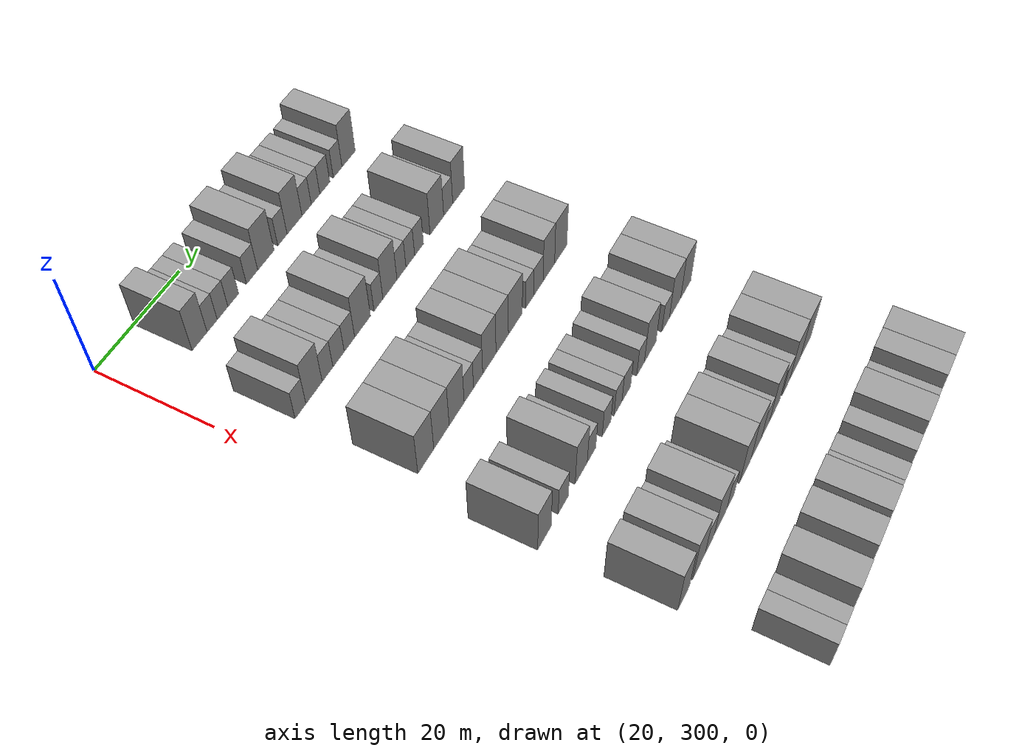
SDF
<sdf version="1.6">
 <world name="default">
  <model name="building_158">
   <static>1</static>
   <pose>25.0000 310.8632 0 0.000000 0.000000 0.000000</pose>
   <link name="link">
    <pose>0 0 4.50 0 0 0</pose>
    <collision name="collision"><geometry><box><size>10.0000 3.6101 9.0000</size></box></geometry></collision>
    <visual name="visual">
     <cast_shadows>0</cast_shadows>
     <geometry><box><size>10.0000 3.6101 9.0000</size></box></geometry>
     <material>
      <script>
       <uri>model://grey_wall/materials/scripts</uri>
       <uri>model://grey_wall/materials/textures</uri>
       <name>vrc/grey_wall</name>
      </script>
     </material>
    </visual>
   </link>
  </model>
  <model name="building_159">
   <static>1</static>
   <pose>25.0000 313.9102 0 0.000000 0.000000 0.000000</pose>
   <link name="link">
    <pose>0 0 3.00 0 0 0</pose>
    <collision name="collision"><geometry><box><size>10.0000 2.4839 6.0000</size></box></geometry></collision>
    <visual name="visual">
     <cast_shadows>0</cast_shadows>
     <geometry><box><size>10.0000 2.4839 6.0000</size></box></geometry>
     <material>
      <script>
       <uri>model://grey_wall/materials/scripts</uri>
       <uri>model://grey_wall/materials/textures</uri>
       <name>vrc/grey_wall</name>
      </script>
     </material>
    </visual>
   </link>
  </model>
  <model name="building_160">
   <static>1</static>
   <pose>25.0000 316.4778 0 0.000000 0.000000 0.000000</pose>
   <link name="link">
    <pose>0 0 3.00 0 0 0</pose>
    <collision name="collision"><geometry><box><size>10.0000 2.6513 6.0000</size></box></geometry></collision>
    <visual name="visual">
     <cast_shadows>0</cast_shadows>
     <geometry><box><size>10.0000 2.6513 6.0000</size></box></geometry>
     <material>
      <script>
       <uri>model://grey_wall/materials/scripts</uri>
       <uri>model://grey_wall/materials/textures</uri>
       <name>vrc/grey_wall</name>
      </script>
     </material>
    </visual>
   </link>
  </model>
  <model name="building_161">
   <static>1</static>
   <pose>25.0000 319.1506 0 0.000000 0.000000 0.000000</pose>
   <link name="link">
    <pose>0 0 3.00 0 0 0</pose>
    <collision name="collision"><geometry><box><size>10.0000 2.6942 6.0000</size></box></geometry></collision>
    <visual name="visual">
     <cast_shadows>0</cast_shadows>
     <geometry><box><size>10.0000 2.6942 6.0000</size></box></geometry>
     <material>
      <script>
       <uri>model://grey_wall/materials/scripts</uri>
       <uri>model://grey_wall/materials/textures</uri>
       <name>vrc/grey_wall</name>
      </script>
     </material>
    </visual>
   </link>
  </model>
  <model name="building_162">
   <static>1</static>
   <pose>25.0000 323.9508 0 0.000000 0.000000 0.000000</pose>
   <link name="link">
    <pose>0 0 3.00 0 0 0</pose>
    <collision name="collision"><geometry><box><size>10.0000 2.9062 6.0000</size></box></geometry></collision>
    <visual name="visual">
     <cast_shadows>0</cast_shadows>
     <geometry><box><size>10.0000 2.9062 6.0000</size></box></geometry>
     <material>
      <script>
       <uri>model://grey_wall/materials/scripts</uri>
       <uri>model://grey_wall/materials/textures</uri>
       <name>vrc/grey_wall</name>
      </script>
     </material>
    </visual>
   </link>
  </model>
  <model name="building_163">
   <static>1</static>
   <pose>25.0000 327.5592 0 0.000000 0.000000 0.000000</pose>
   <link name="link">
    <pose>0 0 4.50 0 0 0</pose>
    <collision name="collision"><geometry><box><size>10.0000 4.3105 9.0000</size></box></geometry></collision>
    <visual name="visual">
     <cast_shadows>0</cast_shadows>
     <geometry><box><size>10.0000 4.3105 9.0000</size></box></geometry>
     <material>
      <script>
       <uri>model://grey_wall/materials/scripts</uri>
       <uri>model://grey_wall/materials/textures</uri>
       <name>vrc/grey_wall</name>
      </script>
     </material>
    </visual>
   </link>
  </model>
  <model name="building_164">
   <static>1</static>
   <pose>25.0000 331.9665 0 0.000000 0.000000 0.000000</pose>
   <link name="link">
    <pose>0 0 3.00 0 0 0</pose>
    <collision name="collision"><geometry><box><size>10.0000 2.5041 6.0000</size></box></geometry></collision>
    <visual name="visual">
     <cast_shadows>0</cast_shadows>
     <geometry><box><size>10.0000 2.5041 6.0000</size></box></geometry>
     <material>
      <script>
       <uri>model://grey_wall/materials/scripts</uri>
       <uri>model://grey_wall/materials/textures</uri>
       <name>vrc/grey_wall</name>
      </script>
     </material>
    </visual>
   </link>
  </model>
  <model name="building_165">
   <static>1</static>
   <pose>25.0000 335.2694 0 0.000000 0.000000 0.000000</pose>
   <link name="link">
    <pose>0 0 4.50 0 0 0</pose>
    <collision name="collision"><geometry><box><size>10.0000 4.1018 9.0000</size></box></geometry></collision>
    <visual name="visual">
     <cast_shadows>0</cast_shadows>
     <geometry><box><size>10.0000 4.1018 9.0000</size></box></geometry>
     <material>
      <script>
       <uri>model://grey_wall/materials/scripts</uri>
       <uri>model://grey_wall/materials/textures</uri>
       <name>vrc/grey_wall</name>
      </script>
     </material>
    </visual>
   </link>
  </model>
  <model name="building_166">
   <static>1</static>
   <pose>25.0000 338.6179 0 0.000000 0.000000 0.000000</pose>
   <link name="link">
    <pose>0 0 3.00 0 0 0</pose>
    <collision name="collision"><geometry><box><size>10.0000 2.5952 6.0000</size></box></geometry></collision>
    <visual name="visual">
     <cast_shadows>0</cast_shadows>
     <geometry><box><size>10.0000 2.5952 6.0000</size></box></geometry>
     <material>
      <script>
       <uri>model://grey_wall/materials/scripts</uri>
       <uri>model://grey_wall/materials/textures</uri>
       <name>vrc/grey_wall</name>
      </script>
     </material>
    </visual>
   </link>
  </model>
  <model name="building_167">
   <static>1</static>
   <pose>25.0000 341.1165 0 0.000000 0.000000 0.000000</pose>
   <link name="link">
    <pose>0 0 3.00 0 0 0</pose>
    <collision name="collision"><geometry><box><size>10.0000 2.4020 6.0000</size></box></geometry></collision>
    <visual name="visual">
     <cast_shadows>0</cast_shadows>
     <geometry><box><size>10.0000 2.4020 6.0000</size></box></geometry>
     <material>
      <script>
       <uri>model://grey_wall/materials/scripts</uri>
       <uri>model://grey_wall/materials/textures</uri>
       <name>vrc/grey_wall</name>
      </script>
     </material>
    </visual>
   </link>
  </model>
  <model name="building_168">
   <static>1</static>
   <pose>25.0000 343.7539 0 0.000000 0.000000 0.000000</pose>
   <link name="link">
    <pose>0 0 3.00 0 0 0</pose>
    <collision name="collision"><geometry><box><size>10.0000 2.8727 6.0000</size></box></geometry></collision>
    <visual name="visual">
     <cast_shadows>0</cast_shadows>
     <geometry><box><size>10.0000 2.8727 6.0000</size></box></geometry>
     <material>
      <script>
       <uri>model://grey_wall/materials/scripts</uri>
       <uri>model://grey_wall/materials/textures</uri>
       <name>vrc/grey_wall</name>
      </script>
     </material>
    </visual>
   </link>
  </model>
  <model name="building_169">
   <static>1</static>
   <pose>25.0000 347.4581 0 0.000000 0.000000 0.000000</pose>
   <link name="link">
    <pose>0 0 3.00 0 0 0</pose>
    <collision name="collision"><geometry><box><size>10.0000 2.5357 6.0000</size></box></geometry></collision>
    <visual name="visual">
     <cast_shadows>0</cast_shadows>
     <geometry><box><size>10.0000 2.5357 6.0000</size></box></geometry>
     <material>
      <script>
       <uri>model://grey_wall/materials/scripts</uri>
       <uri>model://grey_wall/materials/textures</uri>
       <name>vrc/grey_wall</name>
      </script>
     </material>
    </visual>
   </link>
  </model>
  <model name="building_170">
   <static>1</static>
   <pose>25.0000 350.6751 0 0.000000 0.000000 0.000000</pose>
   <link name="link">
    <pose>0 0 4.50 0 0 0</pose>
    <collision name="collision"><geometry><box><size>10.0000 3.8984 9.0000</size></box></geometry></collision>
    <visual name="visual">
     <cast_shadows>0</cast_shadows>
     <geometry><box><size>10.0000 3.8984 9.0000</size></box></geometry>
     <material>
      <script>
       <uri>model://grey_wall/materials/scripts</uri>
       <uri>model://grey_wall/materials/textures</uri>
       <name>vrc/grey_wall</name>
      </script>
     </material>
    </visual>
   </link>
  </model>
  <model name="building_332">
   <static>1</static>
   <pose>44.0000 307.4286 0 0.000000 0.000000 0.000000</pose>
   <link name="link">
    <pose>0 0 3.00 0 0 0</pose>
    <collision name="collision"><geometry><box><size>10.0000 2.6890 6.0000</size></box></geometry></collision>
    <visual name="visual">
     <cast_shadows>0</cast_shadows>
     <geometry><box><size>10.0000 2.6890 6.0000</size></box></geometry>
     <material>
      <script>
       <uri>model://grey_wall/materials/scripts</uri>
       <uri>model://grey_wall/materials/textures</uri>
       <name>vrc/grey_wall</name>
      </script>
     </material>
    </visual>
   </link>
  </model>
  <model name="building_333">
   <static>1</static>
   <pose>44.0000 310.8376 0 0.000000 0.000000 0.000000</pose>
   <link name="link">
    <pose>0 0 4.50 0 0 0</pose>
    <collision name="collision"><geometry><box><size>10.0000 4.1290 9.0000</size></box></geometry></collision>
    <visual name="visual">
     <cast_shadows>0</cast_shadows>
     <geometry><box><size>10.0000 4.1290 9.0000</size></box></geometry>
     <material>
      <script>
       <uri>model://grey_wall/materials/scripts</uri>
       <uri>model://grey_wall/materials/textures</uri>
       <name>vrc/grey_wall</name>
      </script>
     </material>
    </visual>
   </link>
  </model>
  <model name="building_334">
   <static>1</static>
   <pose>44.0000 314.2913 0 0.000000 0.000000 0.000000</pose>
   <link name="link">
    <pose>0 0 3.00 0 0 0</pose>
    <collision name="collision"><geometry><box><size>10.0000 2.7785 6.0000</size></box></geometry></collision>
    <visual name="visual">
     <cast_shadows>0</cast_shadows>
     <geometry><box><size>10.0000 2.7785 6.0000</size></box></geometry>
     <material>
      <script>
       <uri>model://grey_wall/materials/scripts</uri>
       <uri>model://grey_wall/materials/textures</uri>
       <name>vrc/grey_wall</name>
      </script>
     </material>
    </visual>
   </link>
  </model>
  <model name="building_335">
   <static>1</static>
   <pose>44.0000 317.1644 0 0.000000 0.000000 0.000000</pose>
   <link name="link">
    <pose>0 0 3.00 0 0 0</pose>
    <collision name="collision"><geometry><box><size>10.0000 2.9675 6.0000</size></box></geometry></collision>
    <visual name="visual">
     <cast_shadows>0</cast_shadows>
     <geometry><box><size>10.0000 2.9675 6.0000</size></box></geometry>
     <material>
      <script>
       <uri>model://grey_wall/materials/scripts</uri>
       <uri>model://grey_wall/materials/textures</uri>
       <name>vrc/grey_wall</name>
      </script>
     </material>
    </visual>
   </link>
  </model>
  <model name="building_336">
   <static>1</static>
   <pose>44.0000 320.0405 0 0.000000 0.000000 0.000000</pose>
   <link name="link">
    <pose>0 0 3.00 0 0 0</pose>
    <collision name="collision"><geometry><box><size>10.0000 2.7847 6.0000</size></box></geometry></collision>
    <visual name="visual">
     <cast_shadows>0</cast_shadows>
     <geometry><box><size>10.0000 2.7847 6.0000</size></box></geometry>
     <material>
      <script>
       <uri>model://grey_wall/materials/scripts</uri>
       <uri>model://grey_wall/materials/textures</uri>
       <name>vrc/grey_wall</name>
      </script>
     </material>
    </visual>
   </link>
  </model>
  <model name="building_337">
   <static>1</static>
   <pose>44.0000 323.5796 0 0.000000 0.000000 0.000000</pose>
   <link name="link">
    <pose>0 0 4.50 0 0 0</pose>
    <collision name="collision"><geometry><box><size>10.0000 4.2935 9.0000</size></box></geometry></collision>
    <visual name="visual">
     <cast_shadows>0</cast_shadows>
     <geometry><box><size>10.0000 4.2935 9.0000</size></box></geometry>
     <material>
      <script>
       <uri>model://grey_wall/materials/scripts</uri>
       <uri>model://grey_wall/materials/textures</uri>
       <name>vrc/grey_wall</name>
      </script>
     </material>
    </visual>
   </link>
  </model>
  <model name="building_338">
   <static>1</static>
   <pose>44.0000 327.9568 0 0.000000 0.000000 0.000000</pose>
   <link name="link">
    <pose>0 0 3.00 0 0 0</pose>
    <collision name="collision"><geometry><box><size>10.0000 2.4608 6.0000</size></box></geometry></collision>
    <visual name="visual">
     <cast_shadows>0</cast_shadows>
     <geometry><box><size>10.0000 2.4608 6.0000</size></box></geometry>
     <material>
      <script>
       <uri>model://grey_wall/materials/scripts</uri>
       <uri>model://grey_wall/materials/textures</uri>
       <name>vrc/grey_wall</name>
      </script>
     </material>
    </visual>
   </link>
  </model>
  <model name="building_339">
   <static>1</static>
   <pose>44.0000 331.1853 0 0.000000 0.000000 0.000000</pose>
   <link name="link">
    <pose>0 0 4.50 0 0 0</pose>
    <collision name="collision"><geometry><box><size>10.0000 3.9963 9.0000</size></box></geometry></collision>
    <visual name="visual">
     <cast_shadows>0</cast_shadows>
     <geometry><box><size>10.0000 3.9963 9.0000</size></box></geometry>
     <material>
      <script>
       <uri>model://grey_wall/materials/scripts</uri>
       <uri>model://grey_wall/materials/textures</uri>
       <name>vrc/grey_wall</name>
      </script>
     </material>
    </visual>
   </link>
  </model>
  <model name="building_340">
   <static>1</static>
   <pose>44.0000 334.4826 0 0.000000 0.000000 0.000000</pose>
   <link name="link">
    <pose>0 0 3.00 0 0 0</pose>
    <collision name="collision"><geometry><box><size>10.0000 2.5983 6.0000</size></box></geometry></collision>
    <visual name="visual">
     <cast_shadows>0</cast_shadows>
     <geometry><box><size>10.0000 2.5983 6.0000</size></box></geometry>
     <material>
      <script>
       <uri>model://grey_wall/materials/scripts</uri>
       <uri>model://grey_wall/materials/textures</uri>
       <name>vrc/grey_wall</name>
      </script>
     </material>
    </visual>
   </link>
  </model>
  <model name="building_341">
   <static>1</static>
   <pose>44.0000 337.0507 0 0.000000 0.000000 0.000000</pose>
   <link name="link">
    <pose>0 0 3.00 0 0 0</pose>
    <collision name="collision"><geometry><box><size>10.0000 2.5379 6.0000</size></box></geometry></collision>
    <visual name="visual">
     <cast_shadows>0</cast_shadows>
     <geometry><box><size>10.0000 2.5379 6.0000</size></box></geometry>
     <material>
      <script>
       <uri>model://grey_wall/materials/scripts</uri>
       <uri>model://grey_wall/materials/textures</uri>
       <name>vrc/grey_wall</name>
      </script>
     </material>
    </visual>
   </link>
  </model>
  <model name="building_342">
   <static>1</static>
   <pose>44.0000 339.6218 0 0.000000 0.000000 0.000000</pose>
   <link name="link">
    <pose>0 0 3.00 0 0 0</pose>
    <collision name="collision"><geometry><box><size>10.0000 2.6044 6.0000</size></box></geometry></collision>
    <visual name="visual">
     <cast_shadows>0</cast_shadows>
     <geometry><box><size>10.0000 2.6044 6.0000</size></box></geometry>
     <material>
      <script>
       <uri>model://grey_wall/materials/scripts</uri>
       <uri>model://grey_wall/materials/textures</uri>
       <name>vrc/grey_wall</name>
      </script>
     </material>
    </visual>
   </link>
  </model>
  <model name="building_343">
   <static>1</static>
   <pose>44.0000 345.0038 0 0.000000 0.000000 0.000000</pose>
   <link name="link">
    <pose>0 0 4.50 0 0 0</pose>
    <collision name="collision"><geometry><box><size>10.0000 4.1595 9.0000</size></box></geometry></collision>
    <visual name="visual">
     <cast_shadows>0</cast_shadows>
     <geometry><box><size>10.0000 4.1595 9.0000</size></box></geometry>
     <material>
      <script>
       <uri>model://grey_wall/materials/scripts</uri>
       <uri>model://grey_wall/materials/textures</uri>
       <name>vrc/grey_wall</name>
      </script>
     </material>
    </visual>
   </link>
  </model>
  <model name="building_344">
   <static>1</static>
   <pose>44.0000 348.4820 0 0.000000 0.000000 0.000000</pose>
   <link name="link">
    <pose>0 0 3.00 0 0 0</pose>
    <collision name="collision"><geometry><box><size>10.0000 2.7969 6.0000</size></box></geometry></collision>
    <visual name="visual">
     <cast_shadows>0</cast_shadows>
     <geometry><box><size>10.0000 2.7969 6.0000</size></box></geometry>
     <material>
      <script>
       <uri>model://grey_wall/materials/scripts</uri>
       <uri>model://grey_wall/materials/textures</uri>
       <name>vrc/grey_wall</name>
      </script>
     </material>
    </visual>
   </link>
  </model>
  <model name="building_345">
   <static>1</static>
   <pose>44.0000 351.7550 0 0.000000 0.000000 0.000000</pose>
   <link name="link">
    <pose>0 0 4.50 0 0 0</pose>
    <collision name="collision"><geometry><box><size>10.0000 3.7489 9.0000</size></box></geometry></collision>
    <visual name="visual">
     <cast_shadows>0</cast_shadows>
     <geometry><box><size>10.0000 3.7489 9.0000</size></box></geometry>
     <material>
      <script>
       <uri>model://grey_wall/materials/scripts</uri>
       <uri>model://grey_wall/materials/textures</uri>
       <name>vrc/grey_wall</name>
      </script>
     </material>
    </visual>
   </link>
  </model>
  <model name="building_506">
   <static>1</static>
   <pose>63.0000 308.3332 0 0.000000 0.000000 0.000000</pose>
   <link name="link">
    <pose>0 0 4.50 0 0 0</pose>
    <collision name="collision"><geometry><box><size>10.0000 4.2466 9.0000</size></box></geometry></collision>
    <visual name="visual">
     <cast_shadows>0</cast_shadows>
     <geometry><box><size>10.0000 4.2466 9.0000</size></box></geometry>
     <material>
      <script>
       <uri>model://grey_wall/materials/scripts</uri>
       <uri>model://grey_wall/materials/textures</uri>
       <name>vrc/grey_wall</name>
      </script>
     </material>
    </visual>
   </link>
  </model>
  <model name="building_507">
   <static>1</static>
   <pose>63.0000 312.5521 0 0.000000 0.000000 0.000000</pose>
   <link name="link">
    <pose>0 0 4.50 0 0 0</pose>
    <collision name="collision"><geometry><box><size>10.0000 4.1911 9.0000</size></box></geometry></collision>
    <visual name="visual">
     <cast_shadows>0</cast_shadows>
     <geometry><box><size>10.0000 4.1911 9.0000</size></box></geometry>
     <material>
      <script>
       <uri>model://grey_wall/materials/scripts</uri>
       <uri>model://grey_wall/materials/textures</uri>
       <name>vrc/grey_wall</name>
      </script>
     </material>
    </visual>
   </link>
  </model>
  <model name="building_508">
   <static>1</static>
   <pose>63.0000 316.7325 0 0.000000 0.000000 0.000000</pose>
   <link name="link">
    <pose>0 0 4.50 0 0 0</pose>
    <collision name="collision"><geometry><box><size>10.0000 4.1698 9.0000</size></box></geometry></collision>
    <visual name="visual">
     <cast_shadows>0</cast_shadows>
     <geometry><box><size>10.0000 4.1698 9.0000</size></box></geometry>
     <material>
      <script>
       <uri>model://grey_wall/materials/scripts</uri>
       <uri>model://grey_wall/materials/textures</uri>
       <name>vrc/grey_wall</name>
      </script>
     </material>
    </visual>
   </link>
  </model>
  <model name="building_509">
   <static>1</static>
   <pose>63.0000 320.1548 0 0.000000 0.000000 0.000000</pose>
   <link name="link">
    <pose>0 0 3.00 0 0 0</pose>
    <collision name="collision"><geometry><box><size>10.0000 2.6748 6.0000</size></box></geometry></collision>
    <visual name="visual">
     <cast_shadows>0</cast_shadows>
     <geometry><box><size>10.0000 2.6748 6.0000</size></box></geometry>
     <material>
      <script>
       <uri>model://grey_wall/materials/scripts</uri>
       <uri>model://grey_wall/materials/textures</uri>
       <name>vrc/grey_wall</name>
      </script>
     </material>
    </visual>
   </link>
  </model>
  <model name="building_510">
   <static>1</static>
   <pose>63.0000 322.8231 0 0.000000 0.000000 0.000000</pose>
   <link name="link">
    <pose>0 0 3.00 0 0 0</pose>
    <collision name="collision"><geometry><box><size>10.0000 2.6617 6.0000</size></box></geometry></collision>
    <visual name="visual">
     <cast_shadows>0</cast_shadows>
     <geometry><box><size>10.0000 2.6617 6.0000</size></box></geometry>
     <material>
      <script>
       <uri>model://grey_wall/materials/scripts</uri>
       <uri>model://grey_wall/materials/textures</uri>
       <name>vrc/grey_wall</name>
      </script>
     </material>
    </visual>
   </link>
  </model>
  <model name="building_511">
   <static>1</static>
   <pose>63.0000 326.1185 0 0.000000 0.000000 0.000000</pose>
   <link name="link">
    <pose>0 0 4.50 0 0 0</pose>
    <collision name="collision"><geometry><box><size>10.0000 3.9292 9.0000</size></box></geometry></collision>
    <visual name="visual">
     <cast_shadows>0</cast_shadows>
     <geometry><box><size>10.0000 3.9292 9.0000</size></box></geometry>
     <material>
      <script>
       <uri>model://grey_wall/materials/scripts</uri>
       <uri>model://grey_wall/materials/textures</uri>
       <name>vrc/grey_wall</name>
      </script>
     </material>
    </visual>
   </link>
  </model>
  <model name="building_512">
   <static>1</static>
   <pose>63.0000 329.9365 0 0.000000 0.000000 0.000000</pose>
   <link name="link">
    <pose>0 0 4.50 0 0 0</pose>
    <collision name="collision"><geometry><box><size>10.0000 3.7068 9.0000</size></box></geometry></collision>
    <visual name="visual">
     <cast_shadows>0</cast_shadows>
     <geometry><box><size>10.0000 3.7068 9.0000</size></box></geometry>
     <material>
      <script>
       <uri>model://grey_wall/materials/scripts</uri>
       <uri>model://grey_wall/materials/textures</uri>
       <name>vrc/grey_wall</name>
      </script>
     </material>
    </visual>
   </link>
  </model>
  <model name="building_513">
   <static>1</static>
   <pose>63.0000 333.9376 0 0.000000 0.000000 0.000000</pose>
   <link name="link">
    <pose>0 0 4.50 0 0 0</pose>
    <collision name="collision"><geometry><box><size>10.0000 4.2952 9.0000</size></box></geometry></collision>
    <visual name="visual">
     <cast_shadows>0</cast_shadows>
     <geometry><box><size>10.0000 4.2952 9.0000</size></box></geometry>
     <material>
      <script>
       <uri>model://grey_wall/materials/scripts</uri>
       <uri>model://grey_wall/materials/textures</uri>
       <name>vrc/grey_wall</name>
      </script>
     </material>
    </visual>
   </link>
  </model>
  <model name="building_514">
   <static>1</static>
   <pose>63.0000 338.3845 0 0.000000 0.000000 0.000000</pose>
   <link name="link">
    <pose>0 0 3.00 0 0 0</pose>
    <collision name="collision"><geometry><box><size>10.0000 2.5988 6.0000</size></box></geometry></collision>
    <visual name="visual">
     <cast_shadows>0</cast_shadows>
     <geometry><box><size>10.0000 2.5988 6.0000</size></box></geometry>
     <material>
      <script>
       <uri>model://grey_wall/materials/scripts</uri>
       <uri>model://grey_wall/materials/textures</uri>
       <name>vrc/grey_wall</name>
      </script>
     </material>
    </visual>
   </link>
  </model>
  <model name="building_515">
   <static>1</static>
   <pose>63.0000 341.1776 0 0.000000 0.000000 0.000000</pose>
   <link name="link">
    <pose>0 0 3.00 0 0 0</pose>
    <collision name="collision"><geometry><box><size>10.0000 2.9874 6.0000</size></box></geometry></collision>
    <visual name="visual">
     <cast_shadows>0</cast_shadows>
     <geometry><box><size>10.0000 2.9874 6.0000</size></box></geometry>
     <material>
      <script>
       <uri>model://grey_wall/materials/scripts</uri>
       <uri>model://grey_wall/materials/textures</uri>
       <name>vrc/grey_wall</name>
      </script>
     </material>
    </visual>
   </link>
  </model>
  <model name="building_516">
   <static>1</static>
   <pose>63.0000 344.5275 0 0.000000 0.000000 0.000000</pose>
   <link name="link">
    <pose>0 0 4.50 0 0 0</pose>
    <collision name="collision"><geometry><box><size>10.0000 3.7124 9.0000</size></box></geometry></collision>
    <visual name="visual">
     <cast_shadows>0</cast_shadows>
     <geometry><box><size>10.0000 3.7124 9.0000</size></box></geometry>
     <material>
      <script>
       <uri>model://grey_wall/materials/scripts</uri>
       <uri>model://grey_wall/materials/textures</uri>
       <name>vrc/grey_wall</name>
      </script>
     </material>
    </visual>
   </link>
  </model>
  <model name="building_517">
   <static>1</static>
   <pose>63.0000 348.4287 0 0.000000 0.000000 0.000000</pose>
   <link name="link">
    <pose>0 0 4.50 0 0 0</pose>
    <collision name="collision"><geometry><box><size>10.0000 4.0901 9.0000</size></box></geometry></collision>
    <visual name="visual">
     <cast_shadows>0</cast_shadows>
     <geometry><box><size>10.0000 4.0901 9.0000</size></box></geometry>
     <material>
      <script>
       <uri>model://grey_wall/materials/scripts</uri>
       <uri>model://grey_wall/materials/textures</uri>
       <name>vrc/grey_wall</name>
      </script>
     </material>
    </visual>
   </link>
  </model>
  <model name="building_693">
   <static>1</static>
   <pose>82.0000 305.3458 0 0.000000 0.000000 0.000000</pose>
   <link name="link">
    <pose>0 0 4.50 0 0 0</pose>
    <collision name="collision"><geometry><box><size>10.0000 3.8126 9.0000</size></box></geometry></collision>
    <visual name="visual">
     <cast_shadows>0</cast_shadows>
     <geometry><box><size>10.0000 3.8126 9.0000</size></box></geometry>
     <material>
      <script>
       <uri>model://grey_wall/materials/scripts</uri>
       <uri>model://grey_wall/materials/textures</uri>
       <name>vrc/grey_wall</name>
      </script>
     </material>
    </visual>
   </link>
  </model>
  <model name="building_694">
   <static>1</static>
   <pose>82.0000 310.7434 0 0.000000 0.000000 0.000000</pose>
   <link name="link">
    <pose>0 0 3.00 0 0 0</pose>
    <collision name="collision"><geometry><box><size>10.0000 2.9826 6.0000</size></box></geometry></collision>
    <visual name="visual">
     <cast_shadows>0</cast_shadows>
     <geometry><box><size>10.0000 2.9826 6.0000</size></box></geometry>
     <material>
      <script>
       <uri>model://grey_wall/materials/scripts</uri>
       <uri>model://grey_wall/materials/textures</uri>
       <name>vrc/grey_wall</name>
      </script>
     </material>
    </visual>
   </link>
  </model>
  <model name="building_695">
   <static>1</static>
   <pose>82.0000 316.0466 0 0.000000 0.000000 0.000000</pose>
   <link name="link">
    <pose>0 0 4.50 0 0 0</pose>
    <collision name="collision"><geometry><box><size>10.0000 3.6238 9.0000</size></box></geometry></collision>
    <visual name="visual">
     <cast_shadows>0</cast_shadows>
     <geometry><box><size>10.0000 3.6238 9.0000</size></box></geometry>
     <material>
      <script>
       <uri>model://grey_wall/materials/scripts</uri>
       <uri>model://grey_wall/materials/textures</uri>
       <name>vrc/grey_wall</name>
      </script>
     </material>
    </visual>
   </link>
  </model>
  <model name="building_696">
   <static>1</static>
   <pose>82.0000 319.1694 0 0.000000 0.000000 0.000000</pose>
   <link name="link">
    <pose>0 0 3.00 0 0 0</pose>
    <collision name="collision"><geometry><box><size>10.0000 2.6218 6.0000</size></box></geometry></collision>
    <visual name="visual">
     <cast_shadows>0</cast_shadows>
     <geometry><box><size>10.0000 2.6218 6.0000</size></box></geometry>
     <material>
      <script>
       <uri>model://grey_wall/materials/scripts</uri>
       <uri>model://grey_wall/materials/textures</uri>
       <name>vrc/grey_wall</name>
      </script>
     </material>
    </visual>
   </link>
  </model>
  <model name="building_697">
   <static>1</static>
   <pose>82.0000 323.8464 0 0.000000 0.000000 0.000000</pose>
   <link name="link">
    <pose>0 0 3.00 0 0 0</pose>
    <collision name="collision"><geometry><box><size>10.0000 2.7321 6.0000</size></box></geometry></collision>
    <visual name="visual">
     <cast_shadows>0</cast_shadows>
     <geometry><box><size>10.0000 2.7321 6.0000</size></box></geometry>
     <material>
      <script>
       <uri>model://grey_wall/materials/scripts</uri>
       <uri>model://grey_wall/materials/textures</uri>
       <name>vrc/grey_wall</name>
      </script>
     </material>
    </visual>
   </link>
  </model>
  <model name="building_698">
   <static>1</static>
   <pose>82.0000 327.4817 0 0.000000 0.000000 0.000000</pose>
   <link name="link">
    <pose>0 0 3.00 0 0 0</pose>
    <collision name="collision"><geometry><box><size>10.0000 2.5385 6.0000</size></box></geometry></collision>
    <visual name="visual">
     <cast_shadows>0</cast_shadows>
     <geometry><box><size>10.0000 2.5385 6.0000</size></box></geometry>
     <material>
      <script>
       <uri>model://grey_wall/materials/scripts</uri>
       <uri>model://grey_wall/materials/textures</uri>
       <name>vrc/grey_wall</name>
      </script>
     </material>
    </visual>
   </link>
  </model>
  <model name="building_699">
   <static>1</static>
   <pose>82.0000 330.1828 0 0.000000 0.000000 0.000000</pose>
   <link name="link">
    <pose>0 0 3.00 0 0 0</pose>
    <collision name="collision"><geometry><box><size>10.0000 2.8638 6.0000</size></box></geometry></collision>
    <visual name="visual">
     <cast_shadows>0</cast_shadows>
     <geometry><box><size>10.0000 2.8638 6.0000</size></box></geometry>
     <material>
      <script>
       <uri>model://grey_wall/materials/scripts</uri>
       <uri>model://grey_wall/materials/textures</uri>
       <name>vrc/grey_wall</name>
      </script>
     </material>
    </visual>
   </link>
  </model>
  <model name="building_700">
   <static>1</static>
   <pose>82.0000 334.8943 0 0.000000 0.000000 0.000000</pose>
   <link name="link">
    <pose>0 0 3.00 0 0 0</pose>
    <collision name="collision"><geometry><box><size>10.0000 2.5591 6.0000</size></box></geometry></collision>
    <visual name="visual">
     <cast_shadows>0</cast_shadows>
     <geometry><box><size>10.0000 2.5591 6.0000</size></box></geometry>
     <material>
      <script>
       <uri>model://grey_wall/materials/scripts</uri>
       <uri>model://grey_wall/materials/textures</uri>
       <name>vrc/grey_wall</name>
      </script>
     </material>
    </visual>
   </link>
  </model>
  <model name="building_701">
   <static>1</static>
   <pose>82.0000 338.1633 0 0.000000 0.000000 0.000000</pose>
   <link name="link">
    <pose>0 0 4.50 0 0 0</pose>
    <collision name="collision"><geometry><box><size>10.0000 3.9789 9.0000</size></box></geometry></collision>
    <visual name="visual">
     <cast_shadows>0</cast_shadows>
     <geometry><box><size>10.0000 3.9789 9.0000</size></box></geometry>
     <material>
      <script>
       <uri>model://grey_wall/materials/scripts</uri>
       <uri>model://grey_wall/materials/textures</uri>
       <name>vrc/grey_wall</name>
      </script>
     </material>
    </visual>
   </link>
  </model>
  <model name="building_702">
   <static>1</static>
   <pose>82.0000 343.5040 0 0.000000 0.000000 0.000000</pose>
   <link name="link">
    <pose>0 0 3.00 0 0 0</pose>
    <collision name="collision"><geometry><box><size>10.0000 2.7025 6.0000</size></box></geometry></collision>
    <visual name="visual">
     <cast_shadows>0</cast_shadows>
     <geometry><box><size>10.0000 2.7025 6.0000</size></box></geometry>
     <material>
      <script>
       <uri>model://grey_wall/materials/scripts</uri>
       <uri>model://grey_wall/materials/textures</uri>
       <name>vrc/grey_wall</name>
      </script>
     </material>
    </visual>
   </link>
  </model>
  <model name="building_703">
   <static>1</static>
   <pose>82.0000 346.8751 0 0.000000 0.000000 0.000000</pose>
   <link name="link">
    <pose>0 0 4.50 0 0 0</pose>
    <collision name="collision"><geometry><box><size>10.0000 4.0397 9.0000</size></box></geometry></collision>
    <visual name="visual">
     <cast_shadows>0</cast_shadows>
     <geometry><box><size>10.0000 4.0397 9.0000</size></box></geometry>
     <material>
      <script>
       <uri>model://grey_wall/materials/scripts</uri>
       <uri>model://grey_wall/materials/textures</uri>
       <name>vrc/grey_wall</name>
      </script>
     </material>
    </visual>
   </link>
  </model>
  <model name="building_704">
   <static>1</static>
   <pose>82.0000 350.7434 0 0.000000 0.000000 0.000000</pose>
   <link name="link">
    <pose>0 0 4.50 0 0 0</pose>
    <collision name="collision"><geometry><box><size>10.0000 3.6968 9.0000</size></box></geometry></collision>
    <visual name="visual">
     <cast_shadows>0</cast_shadows>
     <geometry><box><size>10.0000 3.6968 9.0000</size></box></geometry>
     <material>
      <script>
       <uri>model://grey_wall/materials/scripts</uri>
       <uri>model://grey_wall/materials/textures</uri>
       <name>vrc/grey_wall</name>
      </script>
     </material>
    </visual>
   </link>
  </model>
  <model name="building_869">
   <static>1</static>
   <pose>101.0000 305.7612 0 0.000000 0.000000 0.000000</pose>
   <link name="link">
    <pose>0 0 4.50 0 0 0</pose>
    <collision name="collision"><geometry><box><size>10.0000 3.6465 9.0000</size></box></geometry></collision>
    <visual name="visual">
     <cast_shadows>0</cast_shadows>
     <geometry><box><size>10.0000 3.6465 9.0000</size></box></geometry>
     <material>
      <script>
       <uri>model://grey_wall/materials/scripts</uri>
       <uri>model://grey_wall/materials/textures</uri>
       <name>vrc/grey_wall</name>
      </script>
     </material>
    </visual>
   </link>
  </model>
  <model name="building_870">
   <static>1</static>
   <pose>101.0000 310.5620 0 0.000000 0.000000 0.000000</pose>
   <link name="link">
    <pose>0 0 4.50 0 0 0</pose>
    <collision name="collision"><geometry><box><size>10.0000 3.9551 9.0000</size></box></geometry></collision>
    <visual name="visual">
     <cast_shadows>0</cast_shadows>
     <geometry><box><size>10.0000 3.9551 9.0000</size></box></geometry>
     <material>
      <script>
       <uri>model://grey_wall/materials/scripts</uri>
       <uri>model://grey_wall/materials/textures</uri>
       <name>vrc/grey_wall</name>
      </script>
     </material>
    </visual>
   </link>
  </model>
  <model name="building_871">
   <static>1</static>
   <pose>101.0000 314.0082 0 0.000000 0.000000 0.000000</pose>
   <link name="link">
    <pose>0 0 3.00 0 0 0</pose>
    <collision name="collision"><geometry><box><size>10.0000 2.9374 6.0000</size></box></geometry></collision>
    <visual name="visual">
     <cast_shadows>0</cast_shadows>
     <geometry><box><size>10.0000 2.9374 6.0000</size></box></geometry>
     <material>
      <script>
       <uri>model://grey_wall/materials/scripts</uri>
       <uri>model://grey_wall/materials/textures</uri>
       <name>vrc/grey_wall</name>
      </script>
     </material>
    </visual>
   </link>
  </model>
  <model name="building_872">
   <static>1</static>
   <pose>101.0000 317.6067 0 0.000000 0.000000 0.000000</pose>
   <link name="link">
    <pose>0 0 4.50 0 0 0</pose>
    <collision name="collision"><geometry><box><size>10.0000 4.2595 9.0000</size></box></geometry></collision>
    <visual name="visual">
     <cast_shadows>0</cast_shadows>
     <geometry><box><size>10.0000 4.2595 9.0000</size></box></geometry>
     <material>
      <script>
       <uri>model://grey_wall/materials/scripts</uri>
       <uri>model://grey_wall/materials/textures</uri>
       <name>vrc/grey_wall</name>
      </script>
     </material>
    </visual>
   </link>
  </model>
  <model name="building_873">
   <static>1</static>
   <pose>101.0000 320.9633 0 0.000000 0.000000 0.000000</pose>
   <link name="link">
    <pose>0 0 3.00 0 0 0</pose>
    <collision name="collision"><geometry><box><size>10.0000 2.4537 6.0000</size></box></geometry></collision>
    <visual name="visual">
     <cast_shadows>0</cast_shadows>
     <geometry><box><size>10.0000 2.4537 6.0000</size></box></geometry>
     <material>
      <script>
       <uri>model://grey_wall/materials/scripts</uri>
       <uri>model://grey_wall/materials/textures</uri>
       <name>vrc/grey_wall</name>
      </script>
     </material>
    </visual>
   </link>
  </model>
  <model name="building_874">
   <static>1</static>
   <pose>101.0000 326.1560 0 0.000000 0.000000 0.000000</pose>
   <link name="link">
    <pose>0 0 4.50 0 0 0</pose>
    <collision name="collision"><geometry><box><size>10.0000 3.9319 9.0000</size></box></geometry></collision>
    <visual name="visual">
     <cast_shadows>0</cast_shadows>
     <geometry><box><size>10.0000 3.9319 9.0000</size></box></geometry>
     <material>
      <script>
       <uri>model://grey_wall/materials/scripts</uri>
       <uri>model://grey_wall/materials/textures</uri>
       <name>vrc/grey_wall</name>
      </script>
     </material>
    </visual>
   </link>
  </model>
  <model name="building_875">
   <static>1</static>
   <pose>101.0000 330.0517 0 0.000000 0.000000 0.000000</pose>
   <link name="link">
    <pose>0 0 4.50 0 0 0</pose>
    <collision name="collision"><geometry><box><size>10.0000 3.8594 9.0000</size></box></geometry></collision>
    <visual name="visual">
     <cast_shadows>0</cast_shadows>
     <geometry><box><size>10.0000 3.8594 9.0000</size></box></geometry>
     <material>
      <script>
       <uri>model://grey_wall/materials/scripts</uri>
       <uri>model://grey_wall/materials/textures</uri>
       <name>vrc/grey_wall</name>
      </script>
     </material>
    </visual>
   </link>
  </model>
  <model name="building_876">
   <static>1</static>
   <pose>101.0000 333.4437 0 0.000000 0.000000 0.000000</pose>
   <link name="link">
    <pose>0 0 3.00 0 0 0</pose>
    <collision name="collision"><geometry><box><size>10.0000 2.9247 6.0000</size></box></geometry></collision>
    <visual name="visual">
     <cast_shadows>0</cast_shadows>
     <geometry><box><size>10.0000 2.9247 6.0000</size></box></geometry>
     <material>
      <script>
       <uri>model://grey_wall/materials/scripts</uri>
       <uri>model://grey_wall/materials/textures</uri>
       <name>vrc/grey_wall</name>
      </script>
     </material>
    </visual>
   </link>
  </model>
  <model name="building_877">
   <static>1</static>
   <pose>101.0000 336.8094 0 0.000000 0.000000 0.000000</pose>
   <link name="link">
    <pose>0 0 4.50 0 0 0</pose>
    <collision name="collision"><geometry><box><size>10.0000 3.8067 9.0000</size></box></geometry></collision>
    <visual name="visual">
     <cast_shadows>0</cast_shadows>
     <geometry><box><size>10.0000 3.8067 9.0000</size></box></geometry>
     <material>
      <script>
       <uri>model://grey_wall/materials/scripts</uri>
       <uri>model://grey_wall/materials/textures</uri>
       <name>vrc/grey_wall</name>
      </script>
     </material>
    </visual>
   </link>
  </model>
  <model name="building_878">
   <static>1</static>
   <pose>101.0000 341.1080 0 0.000000 0.000000 0.000000</pose>
   <link name="link">
    <pose>0 0 3.00 0 0 0</pose>
    <collision name="collision"><geometry><box><size>10.0000 2.7903 6.0000</size></box></geometry></collision>
    <visual name="visual">
     <cast_shadows>0</cast_shadows>
     <geometry><box><size>10.0000 2.7903 6.0000</size></box></geometry>
     <material>
      <script>
       <uri>model://grey_wall/materials/scripts</uri>
       <uri>model://grey_wall/materials/textures</uri>
       <name>vrc/grey_wall</name>
      </script>
     </material>
    </visual>
   </link>
  </model>
  <model name="building_879">
   <static>1</static>
   <pose>101.0000 344.6045 0 0.000000 0.000000 0.000000</pose>
   <link name="link">
    <pose>0 0 4.50 0 0 0</pose>
    <collision name="collision"><geometry><box><size>10.0000 4.2027 9.0000</size></box></geometry></collision>
    <visual name="visual">
     <cast_shadows>0</cast_shadows>
     <geometry><box><size>10.0000 4.2027 9.0000</size></box></geometry>
     <material>
      <script>
       <uri>model://grey_wall/materials/scripts</uri>
       <uri>model://grey_wall/materials/textures</uri>
       <name>vrc/grey_wall</name>
      </script>
     </material>
    </visual>
   </link>
  </model>
  <model name="building_880">
   <static>1</static>
   <pose>101.0000 348.8937 0 0.000000 0.000000 0.000000</pose>
   <link name="link">
    <pose>0 0 4.50 0 0 0</pose>
    <collision name="collision"><geometry><box><size>10.0000 4.3759 9.0000</size></box></geometry></collision>
    <visual name="visual">
     <cast_shadows>0</cast_shadows>
     <geometry><box><size>10.0000 4.3759 9.0000</size></box></geometry>
     <material>
      <script>
       <uri>model://grey_wall/materials/scripts</uri>
       <uri>model://grey_wall/materials/textures</uri>
       <name>vrc/grey_wall</name>
      </script>
     </material>
    </visual>
   </link>
  </model>
  <model name="building_1041">
   <static>1</static>
   <pose>120.0000 307.1092 0 0.000000 0.000000 0.000000</pose>
   <link name="link">
    <pose>0 0 3.00 0 0 0</pose>
    <collision name="collision"><geometry><box><size>10.0000 2.7901 6.0000</size></box></geometry></collision>
    <visual name="visual">
     <cast_shadows>0</cast_shadows>
     <geometry><box><size>10.0000 2.7901 6.0000</size></box></geometry>
     <material>
      <script>
       <uri>model://grey_wall/materials/scripts</uri>
       <uri>model://grey_wall/materials/textures</uri>
       <name>vrc/grey_wall</name>
      </script>
     </material>
    </visual>
   </link>
  </model>
  <model name="building_1042">
   <static>1</static>
   <pose>120.0000 309.7789 0 0.000000 0.000000 0.000000</pose>
   <link name="link">
    <pose>0 0 3.00 0 0 0</pose>
    <collision name="collision"><geometry><box><size>10.0000 2.5493 6.0000</size></box></geometry></collision>
    <visual name="visual">
     <cast_shadows>0</cast_shadows>
     <geometry><box><size>10.0000 2.5493 6.0000</size></box></geometry>
     <material>
      <script>
       <uri>model://grey_wall/materials/scripts</uri>
       <uri>model://grey_wall/materials/textures</uri>
       <name>vrc/grey_wall</name>
      </script>
     </material>
    </visual>
   </link>
  </model>
  <model name="building_1043">
   <static>1</static>
   <pose>120.0000 314.2231 0 0.000000 0.000000 0.000000</pose>
   <link name="link">
    <pose>0 0 4.50 0 0 0</pose>
    <collision name="collision"><geometry><box><size>10.0000 4.3392 9.0000</size></box></geometry></collision>
    <visual name="visual">
     <cast_shadows>0</cast_shadows>
     <geometry><box><size>10.0000 4.3392 9.0000</size></box></geometry>
     <material>
      <script>
       <uri>model://grey_wall/materials/scripts</uri>
       <uri>model://grey_wall/materials/textures</uri>
       <name>vrc/grey_wall</name>
      </script>
     </material>
    </visual>
   </link>
  </model>
  <model name="building_1044">
   <static>1</static>
   <pose>120.0000 320.5277 0 0.000000 0.000000 0.000000</pose>
   <link name="link">
    <pose>0 0 4.50 0 0 0</pose>
    <collision name="collision"><geometry><box><size>10.0000 4.2699 9.0000</size></box></geometry></collision>
    <visual name="visual">
     <cast_shadows>0</cast_shadows>
     <geometry><box><size>10.0000 4.2699 9.0000</size></box></geometry>
     <material>
      <script>
       <uri>model://grey_wall/materials/scripts</uri>
       <uri>model://grey_wall/materials/textures</uri>
       <name>vrc/grey_wall</name>
      </script>
     </material>
    </visual>
   </link>
  </model>
  <model name="building_1045">
   <static>1</static>
   <pose>120.0000 325.6893 0 0.000000 0.000000 0.000000</pose>
   <link name="link">
    <pose>0 0 4.50 0 0 0</pose>
    <collision name="collision"><geometry><box><size>10.0000 4.0534 9.0000</size></box></geometry></collision>
    <visual name="visual">
     <cast_shadows>0</cast_shadows>
     <geometry><box><size>10.0000 4.0534 9.0000</size></box></geometry>
     <material>
      <script>
       <uri>model://grey_wall/materials/scripts</uri>
       <uri>model://grey_wall/materials/textures</uri>
       <name>vrc/grey_wall</name>
      </script>
     </material>
    </visual>
   </link>
  </model>
  <model name="building_1046">
   <static>1</static>
   <pose>120.0000 329.1153 0 0.000000 0.000000 0.000000</pose>
   <link name="link">
    <pose>0 0 3.00 0 0 0</pose>
    <collision name="collision"><geometry><box><size>10.0000 2.7987 6.0000</size></box></geometry></collision>
    <visual name="visual">
     <cast_shadows>0</cast_shadows>
     <geometry><box><size>10.0000 2.7987 6.0000</size></box></geometry>
     <material>
      <script>
       <uri>model://grey_wall/materials/scripts</uri>
       <uri>model://grey_wall/materials/textures</uri>
       <name>vrc/grey_wall</name>
      </script>
     </material>
    </visual>
   </link>
  </model>
  <model name="building_1047">
   <static>1</static>
   <pose>120.0000 331.9499 0 0.000000 0.000000 0.000000</pose>
   <link name="link">
    <pose>0 0 3.00 0 0 0</pose>
    <collision name="collision"><geometry><box><size>10.0000 2.8705 6.0000</size></box></geometry></collision>
    <visual name="visual">
     <cast_shadows>0</cast_shadows>
     <geometry><box><size>10.0000 2.8705 6.0000</size></box></geometry>
     <material>
      <script>
       <uri>model://grey_wall/materials/scripts</uri>
       <uri>model://grey_wall/materials/textures</uri>
       <name>vrc/grey_wall</name>
      </script>
     </material>
    </visual>
   </link>
  </model>
  <model name="building_1048">
   <static>1</static>
   <pose>120.0000 336.8052 0 0.000000 0.000000 0.000000</pose>
   <link name="link">
    <pose>0 0 3.00 0 0 0</pose>
    <collision name="collision"><geometry><box><size>10.0000 2.8401 6.0000</size></box></geometry></collision>
    <visual name="visual">
     <cast_shadows>0</cast_shadows>
     <geometry><box><size>10.0000 2.8401 6.0000</size></box></geometry>
     <material>
      <script>
       <uri>model://grey_wall/materials/scripts</uri>
       <uri>model://grey_wall/materials/textures</uri>
       <name>vrc/grey_wall</name>
      </script>
     </material>
    </visual>
   </link>
  </model>
  <model name="building_1049">
   <static>1</static>
   <pose>120.0000 340.4618 0 0.000000 0.000000 0.000000</pose>
   <link name="link">
    <pose>0 0 4.50 0 0 0</pose>
    <collision name="collision"><geometry><box><size>10.0000 4.4730 9.0000</size></box></geometry></collision>
    <visual name="visual">
     <cast_shadows>0</cast_shadows>
     <geometry><box><size>10.0000 4.4730 9.0000</size></box></geometry>
     <material>
      <script>
       <uri>model://grey_wall/materials/scripts</uri>
       <uri>model://grey_wall/materials/textures</uri>
       <name>vrc/grey_wall</name>
      </script>
     </material>
    </visual>
   </link>
  </model>
  <model name="building_1050">
   <static>1</static>
   <pose>120.0000 345.0074 0 0.000000 0.000000 0.000000</pose>
   <link name="link">
    <pose>0 0 3.00 0 0 0</pose>
    <collision name="collision"><geometry><box><size>10.0000 2.6183 6.0000</size></box></geometry></collision>
    <visual name="visual">
     <cast_shadows>0</cast_shadows>
     <geometry><box><size>10.0000 2.6183 6.0000</size></box></geometry>
     <material>
      <script>
       <uri>model://grey_wall/materials/scripts</uri>
       <uri>model://grey_wall/materials/textures</uri>
       <name>vrc/grey_wall</name>
      </script>
     </material>
    </visual>
   </link>
  </model>
  <model name="building_1051">
   <static>1</static>
   <pose>120.0000 348.1296 0 0.000000 0.000000 0.000000</pose>
   <link name="link">
    <pose>0 0 4.50 0 0 0</pose>
    <collision name="collision"><geometry><box><size>10.0000 3.6260 9.0000</size></box></geometry></collision>
    <visual name="visual">
     <cast_shadows>0</cast_shadows>
     <geometry><box><size>10.0000 3.6260 9.0000</size></box></geometry>
     <material>
      <script>
       <uri>model://grey_wall/materials/scripts</uri>
       <uri>model://grey_wall/materials/textures</uri>
       <name>vrc/grey_wall</name>
      </script>
     </material>
    </visual>
   </link>
  </model>
  <model name="building_1052">
   <static>1</static>
   <pose>120.0000 352.0171 0 0.000000 0.000000 0.000000</pose>
   <link name="link">
    <pose>0 0 4.50 0 0 0</pose>
    <collision name="collision"><geometry><box><size>10.0000 4.1490 9.0000</size></box></geometry></collision>
    <visual name="visual">
     <cast_shadows>0</cast_shadows>
     <geometry><box><size>10.0000 4.1490 9.0000</size></box></geometry>
     <material>
      <script>
       <uri>model://grey_wall/materials/scripts</uri>
       <uri>model://grey_wall/materials/textures</uri>
       <name>vrc/grey_wall</name>
      </script>
     </material>
    </visual>
   </link>
  </model>
 </world>
</sdf>
